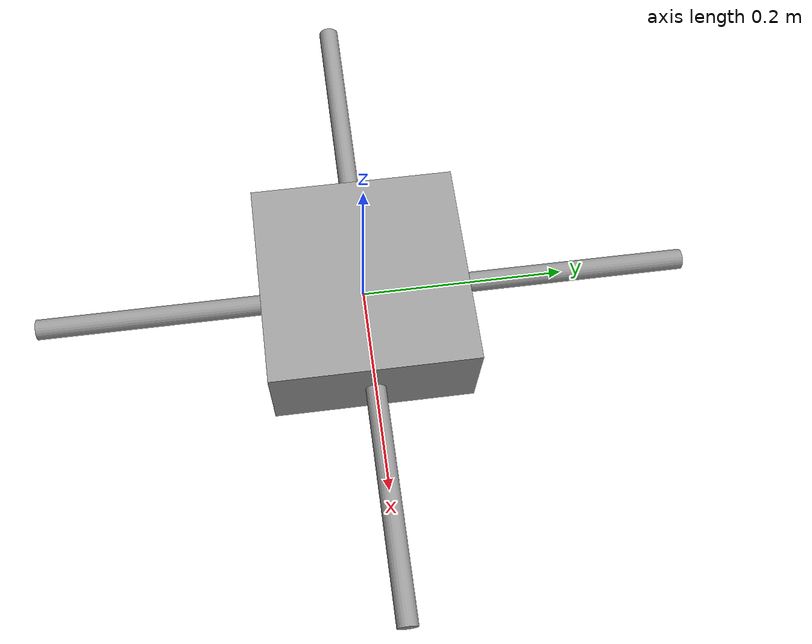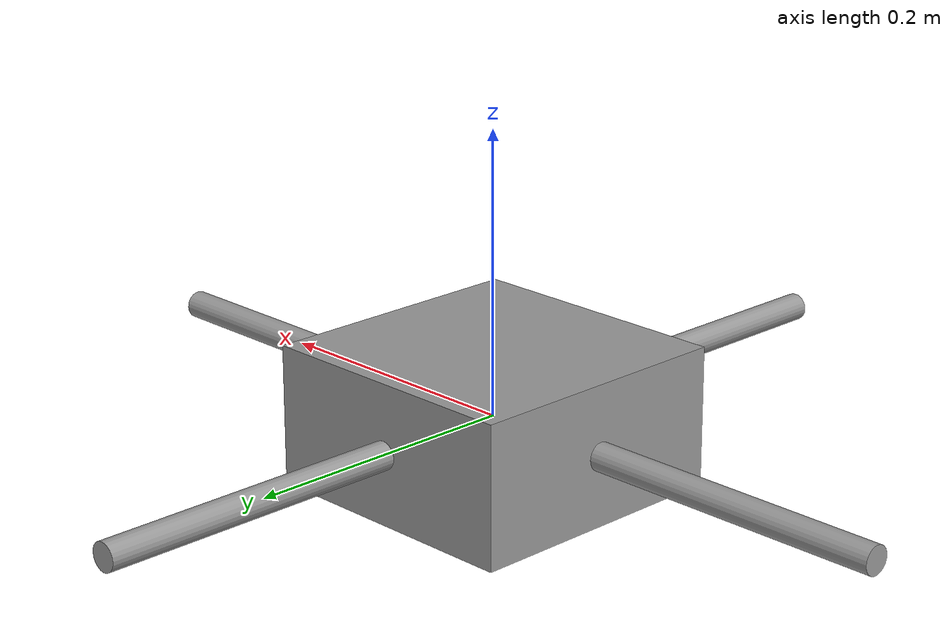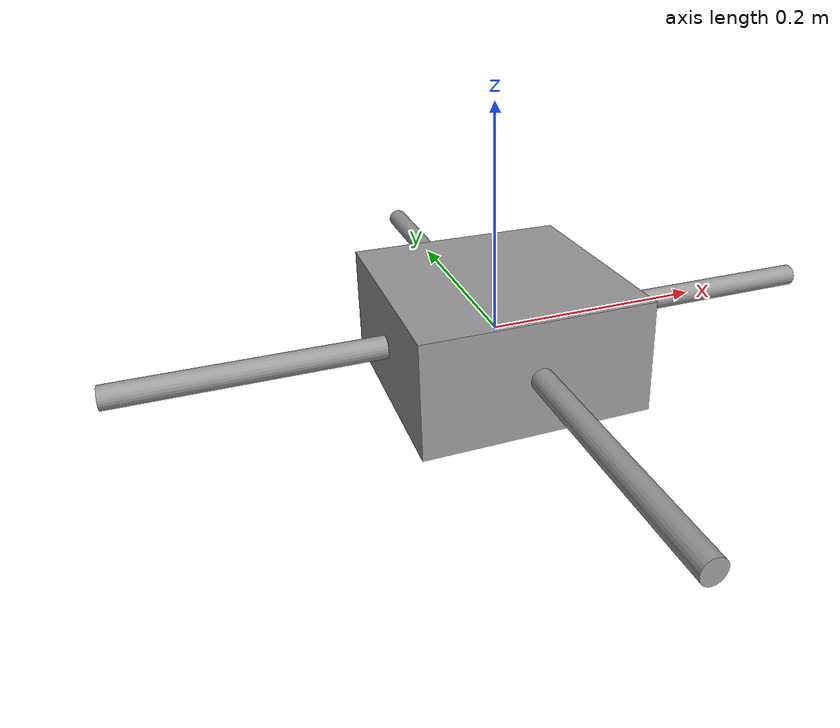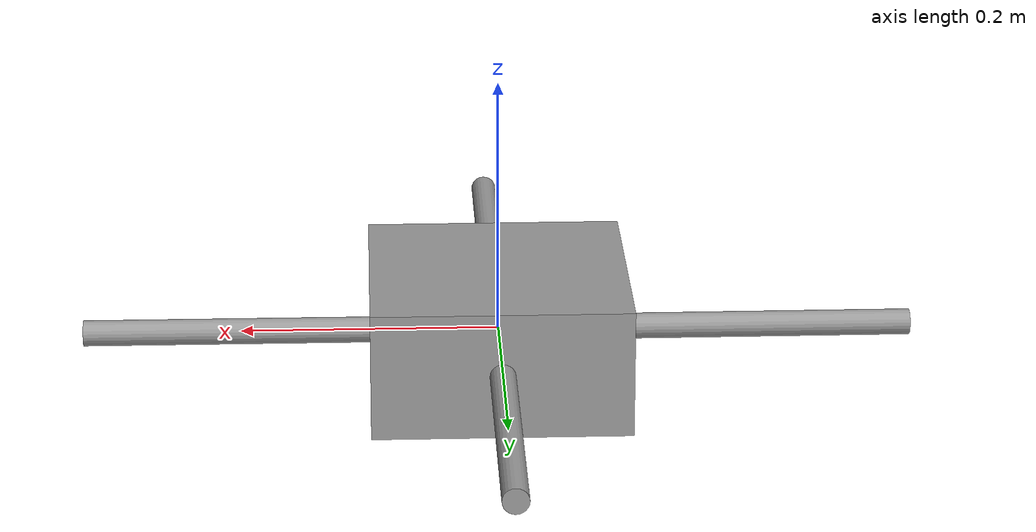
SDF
<?xml version='1.0'?>
<sdf version='1.6'>
  <model name='quad'>
    <link name='link_0'>
      <pose frame=''>0 0 0 0 -0 0</pose>
      <inertial>
        <mass>1</mass>
        <inertia>
          <ixx>0.166667</ixx>
          <ixy>0</ixy>
          <ixz>0</ixz>
          <iyy>0.166667</iyy>
          <iyz>0</iyz>
          <izz>0.166667</izz>
        </inertia>
        <pose frame=''>0 0 0 0 -0 0</pose>
      </inertial>
      <gravity>1</gravity>
      <self_collide>0</self_collide>
      <kinematic>0</kinematic>
      <visual name='visual'>
        <pose frame=''>0 0 0 0 -0 0</pose>
        <geometry>
          <box>
            <size>0.2 0.2 0.1</size>
          </box>
        </geometry>
        <material>
          <lighting>1</lighting>
          <script>
            <uri>file://media/materials/scripts/gazebo.material</uri>
            <name>Gazebo/Grey</name>
          </script>
          <ambient>0.3 0.3 0.3 1</ambient>
          <diffuse>0.7 0.7 0.7 1</diffuse>
          <specular>0.01 0.01 0.01 1</specular>
          <emissive>0 0 0 1</emissive>
          <shader type='vertex'>
            <normal_map>__default__</normal_map>
          </shader>
        </material>
        <cast_shadows>1</cast_shadows>
        <transparency>0</transparency>
      </visual>
    </link>
    <link name='link_1'>
      <pose frame=''>0 0.21 0 0 -0 0</pose>
      <inertial>
        <mass>1</mass>
        <inertia>
          <ixx>0.145833</ixx>
          <ixy>0</ixy>
          <ixz>0</ixz>
          <iyy>0.145833</iyy>
          <iyz>0</iyz>
          <izz>0.125</izz>
        </inertia>
        <pose frame=''>0 0 0 1.57 -0 0</pose>
      </inertial>
      <gravity>1</gravity>
      <self_collide>0</self_collide>
      <kinematic>0</kinematic>
      <visual name='visual'>
        <pose frame=''>0 0 0 1.57 -0 0</pose>
        <geometry>
          <cylinder>
            <radius>0.01</radius>
            <length>0.225</length>
          </cylinder>
        </geometry>
        <material>
          <lighting>1</lighting>
          <script>
            <uri>file://media/materials/scripts/gazebo.material</uri>
            <name>Gazebo/Grey</name>
          </script>
          <ambient>0.3 0.3 0.3 1</ambient>
          <diffuse>0.7 0.7 0.7 1</diffuse>
          <specular>0.01 0.01 0.01 1</specular>
          <emissive>0 0 0 1</emissive>
          <shader type='vertex'>
            <normal_map>__default__</normal_map>
          </shader>
        </material>
        <cast_shadows>1</cast_shadows>
        <transparency>0</transparency>
      </visual>
    </link>
    <link name='link_2'>
      <pose frame=''>0 -0.21 0 0 -0 0</pose>
      <inertial>
        <mass>1</mass>
        <inertia>
          <ixx>0.145833</ixx>
          <ixy>0</ixy>
          <ixz>0</ixz>
          <iyy>0.145833</iyy>
          <iyz>0</iyz>
          <izz>0.125</izz>
        </inertia>
        <pose frame=''>0 0 0 -1.57 0 0</pose>
      </inertial>
      <gravity>1</gravity>
      <self_collide>0</self_collide>
      <kinematic>0</kinematic>
      <visual name='visual'>
        <pose frame=''>0 0 0 -1.57 0 0</pose>
        <geometry>
          <cylinder>
            <radius>0.01</radius>
            <length>0.225</length>
          </cylinder>
        </geometry>
        <material>
          <lighting>1</lighting>
          <script>
            <uri>file://media/materials/scripts/gazebo.material</uri>
            <name>Gazebo/Grey</name>
          </script>
          <ambient>0.3 0.3 0.3 1</ambient>
          <diffuse>0.7 0.7 0.7 1</diffuse>
          <specular>0.01 0.01 0.01 1</specular>
          <emissive>0 0 0 1</emissive>
          <shader type='vertex'>
            <normal_map>__default__</normal_map>
          </shader>
        </material>
        <cast_shadows>1</cast_shadows>
        <transparency>0</transparency>
      </visual>
    </link>
    <link name='link_3'>
      <pose frame=''>0.21 0 0 0 -0 0</pose>
      <inertial>
        <mass>1</mass>
        <inertia>
          <ixx>0.145833</ixx>
          <ixy>0</ixy>
          <ixz>0</ixz>
          <iyy>0.145833</iyy>
          <iyz>0</iyz>
          <izz>0.125</izz>
        </inertia>
        <pose frame=''>0 0 0 0 1.57 0</pose>
      </inertial>
      <gravity>1</gravity>
      <self_collide>0</self_collide>
      <kinematic>0</kinematic>
      <visual name='visual'>
        <pose frame=''>0 0 0 0 1.57 0</pose>
        <geometry>
          <cylinder>
            <radius>0.01</radius>
            <length>0.225</length>
          </cylinder>
        </geometry>
        <material>
          <lighting>1</lighting>
          <script>
            <uri>file://media/materials/scripts/gazebo.material</uri>
            <name>Gazebo/Grey</name>
          </script>
          <ambient>0.3 0.3 0.3 1</ambient>
          <diffuse>0.7 0.7 0.7 1</diffuse>
          <specular>0.01 0.01 0.01 1</specular>
          <emissive>0 0 0 1</emissive>
          <shader type='vertex'>
            <normal_map>__default__</normal_map>
          </shader>
        </material>
        <cast_shadows>1</cast_shadows>
        <transparency>0</transparency>
      </visual>
    </link>
    <link name='link_4'>
      <pose frame=''>-0.21 0 0 0 -0 0</pose>
      <inertial>
        <mass>1</mass>
        <inertia>
          <ixx>0.145833</ixx>
          <ixy>0</ixy>
          <ixz>0</ixz>
          <iyy>0.145833</iyy>
          <iyz>0</iyz>
          <izz>0.125</izz>
        </inertia>
        <pose frame=''>0 0 0 0 -1.57 0</pose>
      </inertial>
      <gravity>1</gravity>
      <self_collide>0</self_collide>
      <kinematic>0</kinematic>
      <visual name='visual'>
        <pose frame=''>0 0 0 0 -1.57 0</pose>
        <geometry>
          <cylinder>
            <radius>0.01</radius>
            <length>0.225</length>
          </cylinder>
        </geometry>
        <material>
          <lighting>1</lighting>
          <script>
            <uri>file://media/materials/scripts/gazebo.material</uri>
            <name>Gazebo/Grey</name>
          </script>
          <ambient>0.3 0.3 0.3 1</ambient>
          <diffuse>0.7 0.7 0.7 1</diffuse>
          <specular>0.01 0.01 0.01 1</specular>
          <emissive>0 0 0 1</emissive>
          <shader type='vertex'>
            <normal_map>__default__</normal_map>
          </shader>
        </material>
        <cast_shadows>1</cast_shadows>
        <transparency>0</transparency>
      </visual>
    </link>
    <joint name='link_0_JOINT_0' type='fixed'>
      <parent>link_0</parent>
      <child>link_1</child>
      <pose frame=''>0 0 0 0 -0 0</pose>
      <physics>
        <ode>
          <limit>
            <cfm>0</cfm>
            <erp>0.2</erp>
          </limit>
          <suspension>
            <cfm>0</cfm>
            <erp>0.2</erp>
          </suspension>
        </ode>
      </physics>
    </joint>
    <joint name='link_0_JOINT_1' type='fixed'>
      <parent>link_0</parent>
      <child>link_2</child>
      <pose frame=''>0 0 0 0 -0 0</pose>
      <physics>
        <ode>
          <limit>
            <cfm>0</cfm>
            <erp>0.2</erp>
          </limit>
          <suspension>
            <cfm>0</cfm>
            <erp>0.2</erp>
          </suspension>
        </ode>
      </physics>
    </joint>
    <joint name='link_0_JOINT_2' type='fixed'>
      <parent>link_0</parent>
      <child>link_3</child>
      <pose frame=''>0 0 0 0 -0 0</pose>
      <physics>
        <ode>
          <limit>
            <cfm>0</cfm>
            <erp>0.2</erp>
          </limit>
          <suspension>
            <cfm>0</cfm>
            <erp>0.2</erp>
          </suspension>
        </ode>
      </physics>
    </joint>
    <joint name='link_0_JOINT_3' type='fixed'>
      <parent>link_0</parent>
      <child>link_4</child>
      <pose frame=''>0 0 0 0 -0 0</pose>
      <physics>
        <ode>
          <limit>
            <cfm>0</cfm>
            <erp>0.2</erp>
          </limit>
          <suspension>
            <cfm>0</cfm>
            <erp>0.2</erp>
          </suspension>
        </ode>
      </physics>
    </joint>
    <static>0</static>
    <allow_auto_disable>1</allow_auto_disable>
  </model>
</sdf>
